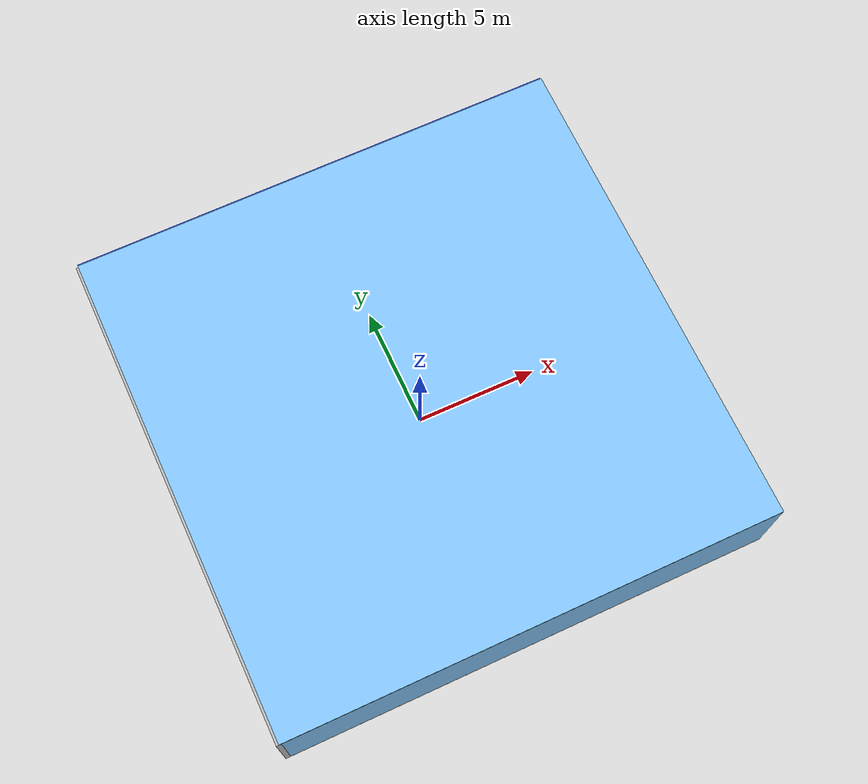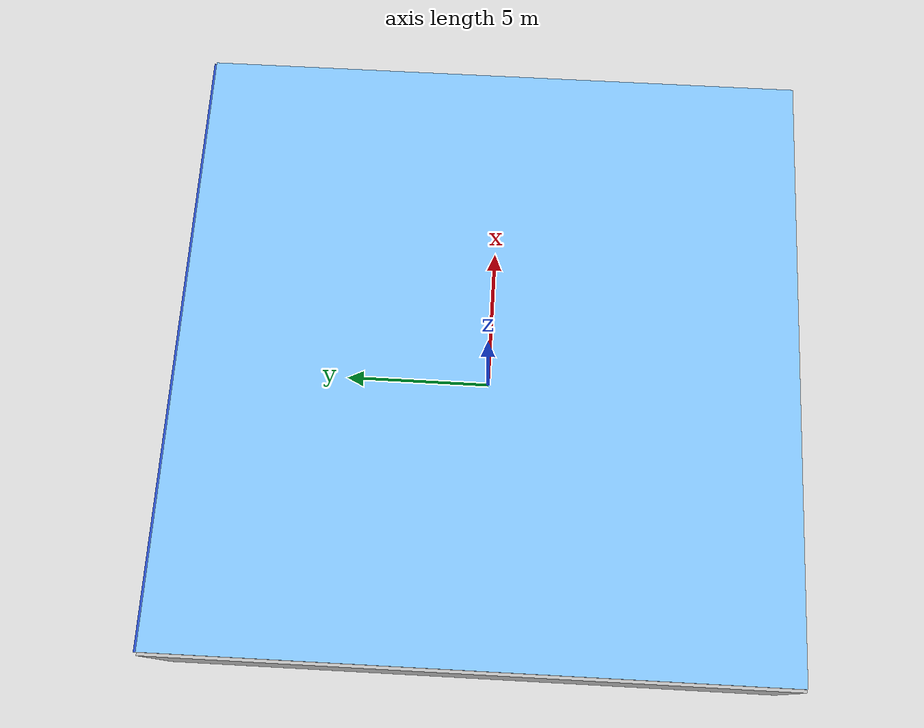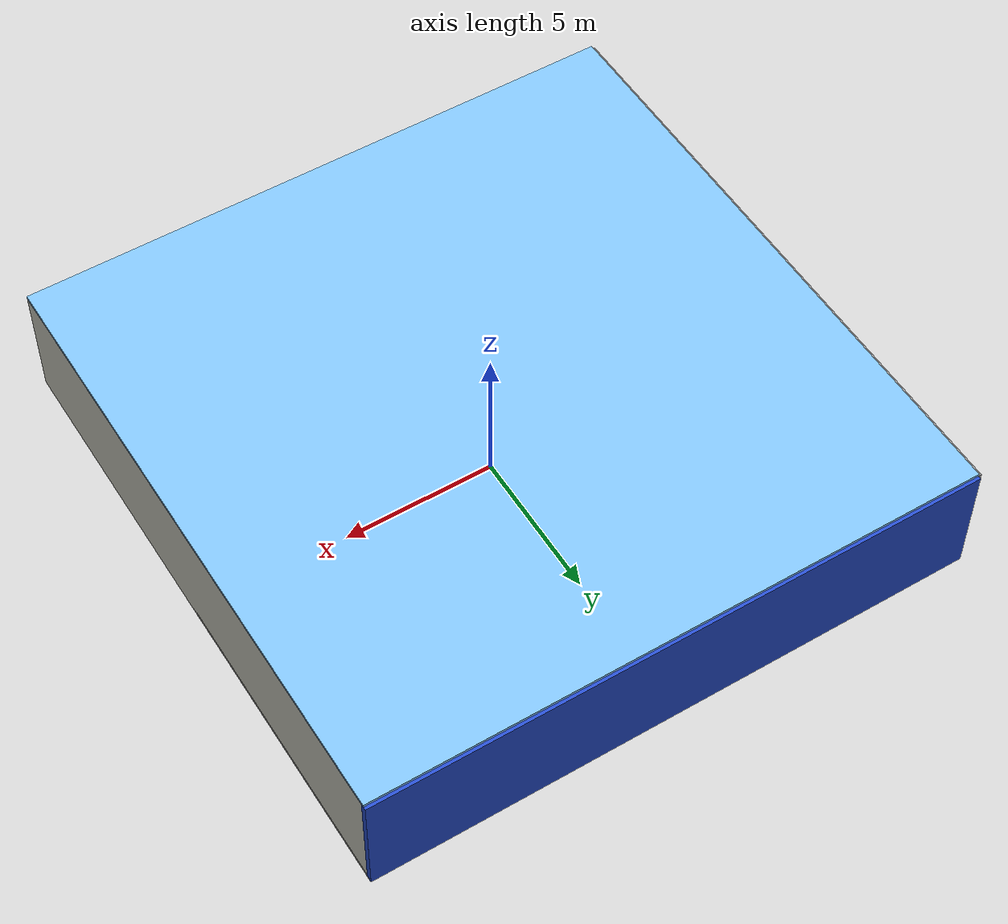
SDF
<sdf version="1.4">
 <world name="default">
  <physics type="ode">
   <max_step_size>0.001</max_step_size>
   <real_time_factor>1</real_time_factor>
   <real_time_update_rate>1000</real_time_update_rate>
   <gravity>0 0 -9.8</gravity>
  </physics>
  <scene><ambient>0.4 0.4 0.4 1</ambient><background>0.7 0.7 0.7 1</background><shadows>1</shadows></scene>
  <model name="Surrounding">
   <static>1</static>
   <link name="Ceiling">
    <collision name="Ceiling_Collision"><geometry><box><size>20 20 0.1</size></box></geometry></collision>
    <visual name="Ceiling_Visual">
     <geometry><box><size>20 20 0.1</size></box></geometry>
     <material>
      <script><uri>file://media/materials/scripts/gazebo.material</uri><name>Gazebo/SkyBlue</name></script>
     </material>
    </visual>
    <pose>0 0 4.05 0 0 0</pose>
   </link>
   <link name="Wall_South">
    <collision name="Wall_South_Collision">
     <geometry><box><size>20 0 4</size></box></geometry>
     <pose>0 0 2 0 -0 0</pose>
    </collision>
    <visual name="Wall_South_Visual">
     <pose>0 0 2 0 -0 0</pose>
     <geometry><box><size>20 0 4</size></box></geometry>
     <material>
      <script><uri>file://media/materials/scripts/gazebo.material</uri><name>Gazebo/SkyBlue</name></script>
     </material>
    </visual>
    <velocity_decay><linear>0</linear><angular>0</angular></velocity_decay>
    <pose>0 -10 0 0 -0 0</pose>
   </link>
   <link name="Wall_East">
    <collision name="Wall_21_Collision">
     <geometry><box><size>20 0 4</size></box></geometry>
     <pose>0 0 2 0 -0 0</pose>
    </collision>
    <visual name="Wall_21_Visual">
     <pose>0 0 2 0 -0 0</pose>
     <geometry><box><size>20 0 4</size></box></geometry>
     <material>
      <script><uri>file://media/materials/scripts/gazebo.material</uri><name>Gazebo/PaintedWall</name></script>
     </material>
    </visual>
    <velocity_decay><linear>0</linear><angular>0</angular></velocity_decay>
    <pose>10 0 0 0 -0 1.5708</pose>
   </link>
   <link name="Wall_North">
    <collision name="Wall_22_Collision">
     <geometry><box><size>20 0.2 4</size></box></geometry>
     <pose>0 0 2 0 -0 0</pose>
    </collision>
    <visual name="Wall_22_Visual">
     <pose>0 0 2 0 -0 0</pose>
     <geometry><box><size>20 0.2 4</size></box></geometry>
     <material>
      <script><uri>file://media/materials/scripts/gazebo.material</uri><name>Gazebo/BlueGlow</name></script>
     </material>
    </visual>
    <velocity_decay><linear>0</linear><angular>0</angular></velocity_decay>
    <pose>0 10 0 0 -0 0</pose>
   </link>
   <link name="Wall_West">
    <collision name="Wall_23_Collision">
     <geometry><box><size>20 0.2 4</size></box></geometry>
     <pose>0 0 2 0 -0 0</pose>
    </collision>
    <visual name="Wall_23_Visual">
     <pose>0 0 2 0 -0 0</pose>
     <geometry><box><size>20 0.2 4</size></box></geometry>
     <material>
      <script><uri>file://media/materials/scripts/gazebo.material</uri><name>Gazebo/PioneerBody</name></script>
     </material>
    </visual>
    <velocity_decay><linear>0</linear><angular>0</angular></velocity_decay>
    <pose>-10 0 0 0 0 -1.5708</pose>
   </link>
   <link name="Ground_link">
    <collision name="collision">
     <pose>0 0 .05 0 -0 0</pose>
     <geometry><box><size>20 20 0.1</size></box></geometry>
    </collision>
    <visual name="visual">
     <pose>0 0 .05 0 -0 0</pose>
     <geometry><box><size>20 20 0.1</size></box></geometry>
     <material>
      <script><uri>file://media/materials/scripts/gazebo.material</uri><name>Gazebo/CeilingTiled</name></script>
     </material>
    </visual>
   </link>
   <static>1</static>
  </model>
  <spherical_coordinates>
   <surface_model>EARTH_WGS84</surface_model>
   <latitude_deg>0</latitude_deg>
   <longitude_deg>0</longitude_deg>
   <elevation>0</elevation>
   <heading_deg>0</heading_deg>
  </spherical_coordinates>
  <light name="lightball_0" type="diffuse">
   <diffuse>0.8 0.8 0.8 1</diffuse>
   <specular>0.2 0.2 0.2 1</specular>
   <attenuation>
    <range>100</range>
    <constant>0.7</constant>
    <linear>0.01</linear>
    <quadratic>0.001</quadratic>
   </attenuation>
   <direction>-0.5 0.1 -0.9</direction>
   <pose>-9.04634967978 4.58251326748 1.73820213297 0 0 0</pose>
  </light>
  <light name="lightball_1" type="diffuse">
   <diffuse>0.8 0.8 0.8 1</diffuse>
   <specular>0.2 0.2 0.2 1</specular>
   <attenuation>
    <range>100</range>
    <constant>0.7</constant>
    <linear>0.01</linear>
    <quadratic>0.001</quadratic>
   </attenuation>
   <direction>-0.5 0.1 -0.9</direction>
   <pose>-3.04446030078 9.42545498963 2.05862497456 0 0 0</pose>
  </light>
  <light name="lightball_2" type="diffuse">
   <diffuse>0.8 0.8 0.8 1</diffuse>
   <specular>0.2 0.2 0.2 1</specular>
   <attenuation>
    <range>100</range>
    <constant>0.7</constant>
    <linear>0.01</linear>
    <quadratic>0.001</quadratic>
   </attenuation>
   <direction>-0.5 0.1 -0.9</direction>
   <pose>-2.36777124868 5.08862565778 2.94658257151 0 0 0</pose>
  </light>
  <light name="lightball_3" type="diffuse">
   <diffuse>0.8 0.8 0.8 1</diffuse>
   <specular>0.2 0.2 0.2 1</specular>
   <attenuation>
    <range>100</range>
    <constant>0.7</constant>
    <linear>0.01</linear>
    <quadratic>0.001</quadratic>
   </attenuation>
   <direction>-0.5 0.1 -0.9</direction>
   <pose>2.95573623298 4.23649021355 1.78714237611 0 0 0</pose>
  </light>
  <light name="lightball_4" type="diffuse">
   <diffuse>0.8 0.8 0.8 1</diffuse>
   <specular>0.2 0.2 0.2 1</specular>
   <attenuation>
    <range>100</range>
    <constant>0.7</constant>
    <linear>0.01</linear>
    <quadratic>0.001</quadratic>
   </attenuation>
   <direction>-0.5 0.1 -0.9</direction>
   <pose>3.78203588125 -3.52074906161 0.602770331113 0 0 0</pose>
  </light>
  <light name="lightball_5" type="diffuse">
   <diffuse>0.8 0.8 0.8 1</diffuse>
   <specular>0.2 0.2 0.2 1</specular>
   <attenuation>
    <range>100</range>
    <constant>0.7</constant>
    <linear>0.01</linear>
    <quadratic>0.001</quadratic>
   </attenuation>
   <direction>-0.5 0.1 -0.9</direction>
   <pose>2.33009852413 -1.74716120726 0.972363777497 0 0 0</pose>
  </light>
  <include><uri>model://cabinet</uri><pose>-7.13026538811 4.26628905372 0 0 0 0.34301144151</pose></include>
  <include>
   <uri>model://robocup_3Dsim_goal</uri>
   <pose>-5.21966901359 7.72746298059 0 0 0 0.498057200811</pose>
  </include>
 </world>
</sdf>

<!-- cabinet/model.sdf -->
<sdf version="1.5">
  <model name="cabinet">
    <static>true</static>
    <link name="cabinet_bottom_plate">
      <inertial>
        <pose>0 0 -1 0 0 0</pose>
        <inertia>
          <ixx>2.050000</ixx>
          <ixy>0</ixy>
          <ixz>0</ixz>
          <iyy>2.050000</iyy>
          <iyz>0</iyz>
          <izz>2.050000</izz>
        </inertia>
        <mass>25.000000</mass>
      </inertial>
      <collision name="cabinet_bottom_plate_geom">
        <pose>0 0 0.010000 0 0 0</pose>
        <geometry>
          <box>
            <size>0.450000 0.450000 0.020000</size>
          </box>
        </geometry>
      </collision>
      <visual name="cabinet_bottom_plate_geom_visual">
        <pose>0 0 0.010000 0 0 0</pose>
        <geometry>
          <box>
            <size>0.450000 0.450000 0.020000</size>
          </box>
        </geometry>
        <material>
          <script>
            <uri>model://media/materials/scripts/gazebo.material</uri>
            <name>Gazebo/Wood</name>
          </script>
        </material>
      </visual>
      <collision name="cabinet_bottom_plate_geom_cabinet_back_plate">
        <pose>0.235000 0 0.510000 0 0 0</pose>
        <geometry>
          <box>
            <size>0.020000 0.450000 1.020000</size>
          </box>
        </geometry>
      </collision>
      <visual name="cabinet_bottom_plate_geom_cabinet_back_plate_visual">
        <pose>0.235000 0 0.510000 0 0 0</pose>
        <geometry>
          <box>
            <size>0.020000 0.450000 1.020000</size>
          </box>
        </geometry>
        <material>
          <script>
            <uri>model://media/materials/scripts/gazebo.material</uri>
            <name>Gazebo/Wood</name>
          </script>
        </material>
      </visual>
      <collision name="cabinet_bottom_plate_geom_cabinet_left_plate">
        <pose>0 0.235000 0.510000 0 0 0</pose>
        <geometry>
          <box>
            <size>0.450000 0.020000 1.020000</size>
          </box>
        </geometry>
      </collision>
      <visual name="cabinet_bottom_plate_geom_cabinet_left_plate_visual">
        <pose>0 0.235000 0.510000 0 0 0</pose>
        <geometry>
          <box>
            <size>0.450000 0.020000 1.020000</size>
          </box>
        </geometry>
        <material>
          <script>
            <uri>model://media/materials/scripts/gazebo.material</uri>
            <name>Gazebo/Wood</name>
          </script>
        </material>
      </visual>
      <collision name="cabinet_bottom_plate_geom_cabinet_middle_plate">
        <pose>0 0 0.510000 0 0 0</pose>
        <geometry>
          <box>
            <size>0.450000 0.450000 0.020000</size>
          </box>
        </geometry>
      </collision>
      <visual name="cabinet_bottom_plate_geom_cabinet_middle_plate_visual">
        <pose>0 0 0.510000 0 0 0</pose>
        <geometry>
          <box>
            <size>0.450000 0.450000 0.020000</size>
          </box>
        </geometry>
        <material>
          <script>
            <uri>model://media/materials/scripts/gazebo.material</uri>
            <name>Gazebo/Wood</name>
          </script>
        </material>
      </visual>
      <collision name="cabinet_bottom_plate_geom_cabinet_right_plate">
        <pose>0 -0.235000 0.510000 0 0 0</pose>
        <geometry>
          <box>
            <size>0.450000 0.020000 1.020000</size>
          </box>
        </geometry>
      </collision>
      <visual name="cabinet_bottom_plate_geom_cabinet_right_plate_visual">
        <pose>0 -0.235000 0.510000 0 0 0</pose>
        <geometry>
          <box>
            <size>0.450000 0.020000 1.020000</size>
          </box>
        </geometry>
        <material>
          <script>
            <uri>model://media/materials/scripts/gazebo.material</uri>
            <name>Gazebo/Wood</name>
          </script>
        </material>
      </visual>
      <collision name="cabinet_bottom_plate_geom_cabinet_top_plate">
        <pose>0 0 1.010000 0 0 0</pose>
        <geometry>
          <box>
            <size>0.450000 0.450000 0.020000</size>
          </box>
        </geometry>
      </collision>
      <visual name="cabinet_bottom_plate_geom_cabinet_top_plate_visual">
        <pose>0 0 1.010000 0 0 0</pose>
        <geometry>
          <box>
            <size>0.450000 0.450000 0.020000</size>
          </box>
        </geometry>
        <material>
          <script>
            <uri>model://media/materials/scripts/gazebo.material</uri>
            <name>Gazebo/Wood</name>
          </script>
        </material>
      </visual>
    </link>
  </model>
</sdf>

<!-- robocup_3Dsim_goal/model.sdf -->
<sdf version="1.5">
  <model name="robocup_3d_goal">
    <static>true</static>
    <link name="left_post">
      <pose>0 1.05 0.45 0 0 0</pose>
      <collision name="collision">
        <geometry>
          <cylinder>
            <radius>0.05</radius>
            <length>0.9</length>
          </cylinder>
        </geometry>
      </collision>
      <visual name="visual">
        <geometry>
          <cylinder>
            <radius>0.05</radius>
            <length>0.9</length>
          </cylinder>
        </geometry>
        <material>
          <script>
            <uri>file://media/materials/scripts/gazebo.material</uri>
            <name>Gazebo/ZincYellow</name>
          </script>
        </material>
      </visual>
    </link>
    <link name="left_support_horiz_lower">
      <pose>0.30 1.05 0.01 0 0 0</pose>
      <collision name="collision">
        <geometry>
          <box>
            <size>0.50 0.02 0.02</size>
          </box>
        </geometry>
      </collision>
      <visual name="visual">
        <geometry>
          <box>
            <size>0.50 0.02 0.02</size>
          </box>
        </geometry>
        <material>
          <script>
            <uri>file://media/materials/scripts/gazebo.material</uri>
            <name>Gazebo/White</name>
          </script>
        </material>
      </visual>
    </link>
    <link name="left_support_horiz_upper">
      <pose>0.30 1.05 0.79 0 0 0</pose>
      <collision name="collision">
        <geometry>
          <box>
            <size>0.50 0.02 0.02</size>
          </box>
        </geometry>
      </collision>
      <visual name="visual">
        <geometry>
          <box>
            <size>0.50 0.02 0.02</size>
          </box>
        </geometry>
        <material>
          <script>
            <uri>file://media/materials/scripts/gazebo.material</uri>
            <name>Gazebo/White</name>
          </script>
        </material>
      </visual>
    </link>
    <link name="left_support_vertical">
      <pose>0.56 1.05 0.4 0 1.5708 0</pose>
      <collision name="collision">
        <geometry>
          <box>
            <size>0.80 0.02 0.02</size>
          </box>
        </geometry>
      </collision>
      <visual name="visual">
        <geometry>
          <box>
            <size>0.80 0.02 0.02</size>
          </box>
        </geometry>
        <material>
          <script>
            <uri>file://media/materials/scripts/gazebo.material</uri>
            <name>Gazebo/White</name>
          </script>
        </material>
      </visual>
    </link>
    <link name="right_support_horiz_lower">
      <pose>0.30 -1.05 0.01 0 0 0</pose>
      <collision name="collision">
        <geometry>
          <box>
            <size>0.50 0.02 0.02</size>
          </box>
        </geometry>
      </collision>
      <visual name="visual">
        <geometry>
          <box>
            <size>0.50 0.02 0.02</size>
          </box>
        </geometry>
        <material>
          <script>
            <uri>file://media/materials/scripts/gazebo.material</uri>
            <name>Gazebo/White</name>
          </script>
        </material>
      </visual>
    </link>
    <link name="right_support_horiz_upper">
      <pose>0.30 -1.05 0.79 0 0 0</pose>
      <collision name="collision">
        <geometry>
          <box>
            <size>0.50 0.02 0.02</size>
          </box>
        </geometry>
      </collision>
      <visual name="visual">
        <geometry>
          <box>
            <size>0.50 0.02 0.02</size>
          </box>
        </geometry>
        <material>
          <script>
            <uri>file://media/materials/scripts/gazebo.material</uri>
            <name>Gazebo/White</name>
          </script>
        </material>
      </visual>
    </link>
    <link name="right_support_vertical">
      <pose>0.56 -1.05 0.4 0 1.5708 0</pose>
      <collision name="collision">
        <geometry>
          <box>
            <size>0.80 0.02 0.02</size>
          </box>
        </geometry>
      </collision>
      <visual name="visual">
        <geometry>
          <box>
            <size>0.80 0.02 0.02</size>
          </box>
        </geometry>
        <material>
          <script>
            <uri>file://media/materials/scripts/gazebo.material</uri>
            <name>Gazebo/White</name>
          </script>
        </material>
      </visual>
    </link>
    <link name="center_support_horiz_lower">
      <pose>0.56 0 0.01 0 1.5708 0</pose>
      <collision name="collision">
        <geometry>
          <box>
            <size>0.02 2.08 0.02</size>
          </box>
        </geometry>
      </collision>
      <visual name="visual">
        <geometry>
          <box>
            <size>0.02 2.08 0.02</size>
          </box>
        </geometry>
        <material>
          <script>
            <uri>file://media/materials/scripts/gazebo.material</uri>
            <name>Gazebo/White</name>
          </script>
        </material>
      </visual>
    </link>
    <link name="center_support_horiz_upper">
      <pose>0.56 0 0.79 0 1.5708 0</pose>
      <collision name="collision">
        <geometry>
          <box>
            <size>0.02 2.08 0.02</size>
          </box>
        </geometry>
      </collision>
      <visual name="visual">
        <geometry>
          <box>
            <size>0.02 2.08 0.02</size>
          </box>
        </geometry>
        <material>
          <script>
            <uri>file://media/materials/scripts/gazebo.material</uri>
            <name>Gazebo/White</name>
          </script>
        </material>
      </visual>
    </link>
    <link name="right_post">
      <pose>0 -1.05 0.45 0 0 0</pose>
      <collision name="collision">
        <geometry>
          <cylinder>
            <radius>0.05</radius>
            <length>0.9</length>
          </cylinder>
        </geometry>
      </collision>
      <visual name="visual">
        <geometry>
          <cylinder>
            <radius>0.05</radius>
            <length>0.9</length>
          </cylinder>
        </geometry>
        <material>
          <script>
            <uri>file://media/materials/scripts/gazebo.material</uri>
            <name>Gazebo/ZincYellow</name>
          </script>
        </material>
      </visual>
    </link>
    <link name="crossbar">
      <pose>0 0 0.85 1.57 1.57 0</pose>
      <collision name="collision">
        <geometry>
          <cylinder>
            <radius>0.05</radius>
            <length>2.0</length>
          </cylinder>
        </geometry>
      </collision>
      <visual name="visual">
        <geometry>
          <cylinder>
            <radius>0.05</radius>
            <length>2.0</length>
          </cylinder>
        </geometry>
        <material>
          <script>
            <uri>file://media/materials/scripts/gazebo.material</uri>
            <name>Gazebo/ZincYellow</name>
          </script>
        </material>
      </visual>
    </link>
    <link name="center_net">
      <pose>0.56 0 0.40 0 0 0</pose>
      <collision name="collision">
        <geometry>
          <box>
            <size>0.01 2.1 0.80</size>
          </box>
        </geometry>
      </collision>
      <visual name="visual">
        <geometry>
          <box>
            <size>0.01 2.1 0.80</size>
          </box>
        </geometry>
        <material>
          <script>
            <uri>model://../model_source/models/robocup09_spl_field/materials/scripts/</uri>
            <uri>model://../model_source/models/robocup09_spl_field/materials/textures/</uri>
            <name>RoboCup/Net</name>
          </script>
        </material>
      </visual>
    </link>
    <link name="left_net">
      <pose>0.30 1.05 0.40 0 0 0</pose>
      <collision name="collision">
        <geometry>
          <box>
            <size>0.50 0.01 0.76</size>
          </box>
        </geometry>
      </collision>
      <visual name="visual">
        <geometry>
          <box>
            <size>0.50 0.01 0.76</size>
          </box>
        </geometry>
        <material>
          <script>
            <uri>model://../model_source/models/robocup09_spl_field/materials/scripts/</uri>
            <uri>model://../model_source/models/robocup09_spl_field/materials/textures/</uri>
            <name>RoboCup/Net</name>
          </script>
        </material>
      </visual>
    </link>
    <link name="right_net">
      <pose>0.30 -1.05 0.40 0 0 0</pose>
      <collision name="collision">
        <geometry>
          <box>
            <size>0.50 0.01 0.76</size>
          </box>
        </geometry>
      </collision>
      <visual name="visual">
        <geometry>
          <box>
            <size>0.50 0.01 0.76</size>
          </box>
        </geometry>
        <material>
          <script>
            <uri>model://../model_source/models/robocup09_spl_field/materials/scripts/</uri>
            <uri>model://../model_source/models/robocup09_spl_field/materials/textures/</uri>
            <name>RoboCup/Net</name>
          </script>
        </material>
      </visual>
    </link>
  </model>
</sdf>
